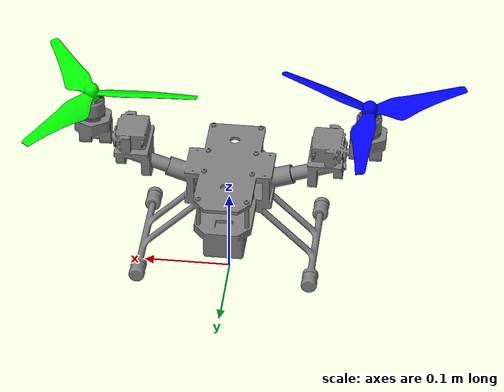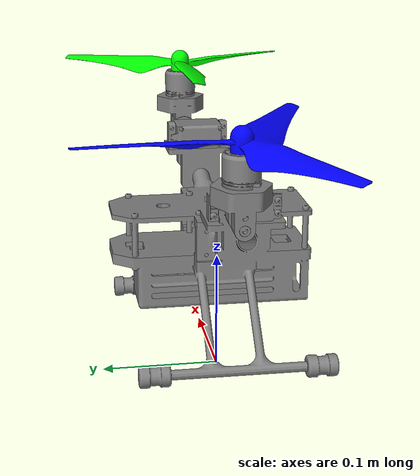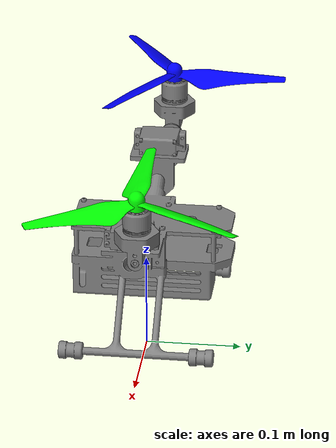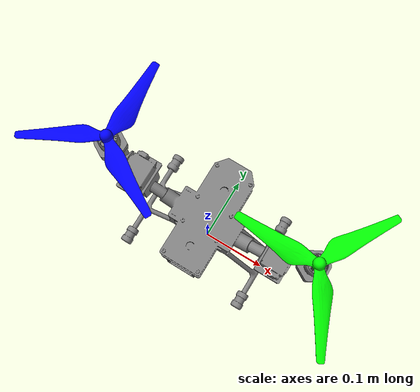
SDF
<sdf version="1.9">
 <world name="runway">
  <physics name="1ms" type="ignore">
   <max_step_size>0.001</max_step_size>
   <real_time_factor>1.0</real_time_factor>
  </physics>
  <plugin filename="gz-sim-physics-system" name="gz::sim::systems::Physics"/>
  <plugin filename="gz-sim-sensors-system" name="gz::sim::systems::Sensors">
   <render_engine>ogre2</render_engine>
  </plugin>
  <plugin filename="gz-sim-user-commands-system" name="gz::sim::systems::UserCommands"/>
  <plugin filename="gz-sim-scene-broadcaster-system" name="gz::sim::systems::SceneBroadcaster"/>
  <plugin filename="gz-sim-imu-system" name="gz::sim::systems::Imu"/>
  <scene><ambient>1.0 1.0 1.0</ambient><background>0.8 0.8 0.8</background></scene>
  <light type="directional" name="sun">
   <pose>0 0 10 0 0 0</pose>
   <diffuse>0.8 0.8 0.8 1</diffuse>
   <specular>0.8 0.8 0.8 1</specular>
   <attenuation>
    <range>1000</range>
    <constant>0.9</constant>
    <linear>0.01</linear>
    <quadratic>0.001</quadratic>
   </attenuation>
   <direction>-0.5 0.1 -0.9</direction>
  </light>
  <include><pose degrees="true">0 0 0.03 0 0 90</pose><uri>model://bicopter_with_ardupilot</uri></include>
 </world>
</sdf>

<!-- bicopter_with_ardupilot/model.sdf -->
<sdf version="1.9">
  <model name="bicopter_with_ardupilot">
    <include>
      <uri>model://bicopter</uri>
    </include>

    <!-- plugins -->
    <plugin name="gz::sim::systems::ApplyJointForce"
        filename="gz-sim-apply-joint-force-system">
      <joint_name>bicopter::ccw_mot_joint</joint_name>
    </plugin>

    <plugin name="gz::sim::systems::ApplyJointForce"
        filename="gz-sim-apply-joint-force-system">
      <joint_name>bicopter::cw_mot_joint</joint_name>
    </plugin>

    <plugin name="gz::sim::systems::ApplyJointForce"
        filename="gz-sim-apply-joint-force-system">
      <joint_name>bicopter::ccw_servo_joint</joint_name>
    </plugin>

    <plugin name="gz::sim::systems::ApplyJointForce"
        filename="gz-sim-apply-joint-force-system">
      <joint_name>bicopter::cw_servo_joint</joint_name>
    </plugin>

    <plugin name="ArduPilotPlugin" filename="ArduPilotPlugin">
      <!-- Port settings -->
      <fdm_addr>127.0.0.1</fdm_addr>
      <fdm_port_in>9002</fdm_port_in>
      <connectionTimeoutMaxCount>5</connectionTimeoutMaxCount>
      <lock_step>1</lock_step>
      <no_time_sync>1</no_time_sync>
      <have_32_channels>0</have_32_channels>

      <!-- Frame conventions
        Require by ArduPilot: change model and gazebo from XYZ to XY-Z coordinates
      -->
      <modelXYZToAirplaneXForwardZDown degrees="true">0 0 0 180 0 0</modelXYZToAirplaneXForwardZDown>
      <gazeboXYZToNED degrees="true">0 0 0 180 0 90</gazeboXYZToNED>

      <!-- Sensors -->
      <imuName>bicopter::imu_link::imu_sensor</imuName>

      <!--
        Details in: https://github.com/ArduPilot/ardupilot/pull/9596

        FRAME_CLASS     10 (BiCopter)
        FRAME_TYPE       0
      -->

      <!--
        SERVO1_FUNCTION 73 (ThrottleLeft)
      -->
      <control channel="0">
        <jointName>bicopter::ccw_mot_joint</jointName>
        <useForce>1</useForce>
        <multiplier>-800</multiplier>
        <offset>0</offset>
        <servo_min>1000</servo_min>
        <servo_max>2000</servo_max>
        <type>VELOCITY</type>
        <p_gain>0.01</p_gain>
        <i_gain>0</i_gain>
        <d_gain>0</d_gain>
        <i_max>1</i_max>
        <i_min>-1</i_min>
        <cmd_max>2.5</cmd_max>
        <cmd_min>-2.5</cmd_min>
      </control>

      <!--
        SERVO2_FUNCTION 74 (ThrottleRight)
      -->
      <control channel="1">
        <jointName>bicopter::cw_mot_joint</jointName>
        <useForce>1</useForce>
        <multiplier>800</multiplier>
        <offset>0</offset>
        <servo_min>1000</servo_min>
        <servo_max>2000</servo_max>
        <type>VELOCITY</type>
        <p_gain>0.01</p_gain>
        <i_gain>0</i_gain>
        <d_gain>0</d_gain>
        <i_max>1</i_max>
        <i_min>-1</i_min>
        <cmd_max>2.5</cmd_max>
        <cmd_min>-2.5</cmd_min>
      </control>

      <!--
        SERVO3_FUNCTION 75 (TiltMotorFrontLeft)
        SERVO3_REVERSED 0
        SERVO3_TRIM     1500
      -->
      <control channel="2">
        <jointName>bicopter::ccw_servo_joint</jointName>
        <useForce>1</useForce>
        <multiplier>1.570796327</multiplier>
        <offset>-0.5</offset>
        <servo_min>1000</servo_min>
        <servo_max>2000</servo_max>
        <type>POSITION</type>
        <p_gain>0.5</p_gain>
        <i_gain>0.0</i_gain>
        <d_gain>0.01</d_gain>
        <i_max>-1</i_max>
        <i_min>0</i_min>
        <cmd_max>2.5</cmd_max>
        <cmd_min>-2.5</cmd_min>
      </control>

      <!--
        SERVO4_FUNCTION 76 (TiltMotorFrontRight)
        SERVO4_REVERSED 0
        SERVO4_TRIM     1500
      -->
      <control channel="3">
        <jointName>bicopter::cw_servo_joint</jointName>
        <useForce>1</useForce>
        <multiplier>1.570796327</multiplier>
        <offset>-0.5</offset>
        <servo_min>1000</servo_min>
        <servo_max>2000</servo_max>
        <type>POSITION</type>
        <p_gain>0.5</p_gain>
        <i_gain>0.0</i_gain>
        <d_gain>0.01</d_gain>
        <i_max>-1</i_max>
        <i_min>0</i_min>
        <cmd_max>2.5</cmd_max>
        <cmd_min>-2.5</cmd_min>
      </control>
    </plugin>

  </model>
</sdf>

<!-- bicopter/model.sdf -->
<sdf version="1.9">
  <model name="bicopter">
    <pose>0 0 0 0 0 0</pose>
    <link name="base_link">
      <inertial>
        <pose>0.0047 0 0.08 0 0 0</pose>
        <mass>0.40</mass>
        <inertia>
          <ixx>0.000813333</ixx>
          <ixy>0</ixy>
          <ixz>0</ixz>
          <iyy>0.001186667</iyy>
          <iyz>0</iyz>
          <izz>0.001333333</izz>
        </inertia>
      </inertial>
      <collision name="collision">
        <geometry>
          <mesh>
            <scale>1 1 1</scale>
            <uri>model://bicopter/meshes/base.stl</uri>
          </mesh>
        </geometry>
        <!--
          Collision approximation:
        -->
        <surface>
          <friction>
            <ode>
              <mu>1.0</mu>
              <mu2>1.0</mu2>
            </ode>
          </friction>
        </surface>
      </collision>
      <visual name="visual">
        <geometry>
          <mesh>
            <scale>1 1 1</scale>
            <uri>model://bicopter/meshes/base.stl</uri>
          </mesh>
        </geometry>
        <material>
          <ambient>0.5 0.5 0.5 1</ambient>
          <diffuse>0.5 0.5 0.5 1</diffuse>
          <specular>0.1 0.1 0.1 1</specular>
        </material>
      </visual>
    </link>

    <!-- left servo (ccw) -->
    <link name="ccw_servo_link">
      <pose relative_to="ccw_servo_joint">0 0 0 0 0 0</pose>
      <inertial>
        <pose>0 0 0 0 0 0</pose>
        <mass>0.050</mass>
        <inertia>
          <ixx>8.33333E-06</ixx>
          <ixy>0</ixy>
          <ixz>0</ixz>
          <iyy>5.41667E-06</iyy>
          <iyz>0</iyz>
          <izz>1.04167E-05</izz>
        </inertia>
      </inertial>
      <collision name="collision">
        <geometry>
          <mesh>
            <scale>1 1 1</scale>
            <uri>model://bicopter/meshes/ccw_servo.stl</uri>
          </mesh>
        </geometry>
      </collision>
      <visual name="visual">
        <geometry>
          <mesh>
            <scale>1 1 1</scale>
            <uri>model://bicopter/meshes/ccw_servo.stl</uri>
          </mesh>
        </geometry>
        <material>
          <ambient>0.5 0.5 0.5</ambient>
          <diffuse>0.5 0.5 0.5</diffuse>
          <specular>0.1 0.1 0.1 1</specular>
        </material>
      </visual>
    </link>
    <joint name="ccw_servo_joint" type="revolute">
      <pose relative_to="base_link">0.010312 0.15468 0.15176 0.018488 0 3.14159</pose>
      <parent>base_link</parent>
      <child>ccw_servo_link</child>
      <axis>
        <xyz>0 -1 0</xyz>
        <limit>
          <lower>-0.785398163</lower>
          <upper>0.785398163</upper>
        </limit>
        <dynamics>
          <damping>0.01</damping>
        </dynamics>
      </axis>
    </joint>

    <!-- left motor (ccw) -->
    <link name="ccw_mot_link">
      <pose relative_to="ccw_mot_joint">0 0 0 0 0 0</pose>
      <inertial>
        <pose>7e-06 -1.2e-05 0.017767 0 0 0</pose>
        <mass>0.050</mass>
        <inertia>
          <ixx>1.19292E-05</ixx>
          <ixy>0</ixy>
          <ixz>0</ixz>
          <iyy>1.19292E-05</iyy>
          <iyz>0</iyz>
          <izz>0.000018225</izz>
          </inertia>
      </inertial>
      <collision name="collision">
        <geometry>
          <mesh>
            <scale>1 1 1</scale>
            <uri>model://bicopter/meshes/ccw_mot.stl</uri>
          </mesh>
        </geometry>
      </collision>
      <visual name="visual">
        <geometry>
          <mesh>
            <scale>1 1 1</scale>
            <uri>model://bicopter/meshes/ccw_mot.stl</uri>
          </mesh>
        </geometry>
        <material>
          <ambient>0 0 1 1</ambient>
          <diffuse>0 0 1 1</diffuse>
          <specular>0.1 0.1 0.1 1</specular>
        </material>
      </visual>
    </link>
    <joint name="ccw_mot_joint" type="revolute">
      <pose relative_to="ccw_servo_link">0 -0.004 0.0425 0 0 0</pose>
      <parent>ccw_servo_link</parent>
      <child>ccw_mot_link</child>
      <axis>
        <xyz>0 0 -1</xyz>
        <limit>
          <lower>-1e+16</lower>
          <upper>1e+16</upper>
        </limit>
        <dynamics>
          <damping>0.004</damping>
        </dynamics>
      </axis>
    </joint>

    <!-- right servo (cw) -->
    <link name="cw_servo_link">
      <pose relative_to="cw_servo_joint">0 0 0 0 0 0</pose>
      <inertial>
        <pose>0 0 0 0 0 0</pose>
        <mass>0.050</mass>
        <inertia>
          <ixx>8.33333E-06</ixx>
          <ixy>0</ixy>
          <ixz>0</ixz>
          <iyy>5.41667E-06</iyy>
          <iyz>0</iyz>
          <izz>1.04167E-05</izz>
        </inertia>
      </inertial>
      <collision name="collision">
        <geometry>
          <mesh>
            <scale>1 1 1</scale>
            <uri>model://bicopter/meshes/cw_servo.stl</uri>
          </mesh>
        </geometry>
      </collision>
      <visual name="visual">
        <geometry>
          <mesh>
            <scale>1 1 1</scale>
            <uri>model://bicopter/meshes/cw_servo.stl</uri>
          </mesh>
        </geometry>
        <material>
          <ambient>0.5 0.5 0.5</ambient>
          <diffuse>0.5 0.5 0.5</diffuse>
          <specular>0.1 0.1 0.1 1</specular>
        </material>
      </visual>
    </link>
    <joint name="cw_servo_joint" type="revolute">
      <pose relative_to="base_link">0.010312 -0.14923 0.15181 -0.018488 0 -3.14159</pose>
      <parent>base_link</parent>
      <child>cw_servo_link</child>
      <axis>
        <xyz>0 1 0</xyz>
        <limit>
          <lower>-0.785398163</lower>
          <upper>0.785398163</upper>
        </limit>
        <dynamics>
          <damping>0.01</damping>
        </dynamics>
      </axis>
    </joint>

    <!-- right motor (cw) -->
    <link name="cw_mot_link">
      <pose relative_to="cw_mot_joint">0 0 0 0 0 0</pose>
      <inertial>
        <pose>0 9e-06 0.017847 0 0 0</pose>
        <mass>0.050</mass>
        <inertia>
          <ixx>1.19292E-05</ixx>
          <ixy>0</ixy>
          <ixz>0</ixz>
          <iyy>1.19292E-05</iyy>
          <iyz>0</iyz>
          <izz>0.000018225</izz>
        </inertia>
      </inertial>
      <collision name="collision">
        <geometry>
          <mesh>
            <scale>1 1 1</scale>
            <uri>model://bicopter/meshes/cw_mot.stl</uri>
          </mesh>
        </geometry>
      </collision>
      <visual name="visual">
        <geometry>
          <mesh>
            <scale>1 1 1</scale>
            <uri>model://bicopter/meshes/cw_mot.stl</uri>
          </mesh>
        </geometry>
        <material>
          <ambient>0 1 0</ambient>
          <diffuse>0 1 0</diffuse>
          <specular>0.1 0.1 0.1 1.0</specular>
        </material>
      </visual>
      </link>
    <joint name="cw_mot_joint" type="revolute">
      <pose relative_to="cw_servo_link">0 0.003829 0.041455 0 0 0</pose>
      <parent>cw_servo_link</parent>
      <child>cw_mot_link</child>
      <axis>
        <xyz>0 0 -1</xyz>
        <limit>
          <lower>-1e+16</lower>
          <upper>1e+16</upper>
        </limit>
        <dynamics>
          <damping>0.004</damping>
        </dynamics>
      </axis>
    </joint>

    <!-- sensors -->
    <link name="imu_link">
      <pose>0 0 0.08 0 0 0</pose>
      <inertial>
        <mass>0.05</mass>
        <inertia>
          <ixx>1.33333E-05</ixx>
          <ixy>0</ixy>
          <ixz>0</ixz>
          <iyy>1.33333E-05</iyy>
          <iyz>0</iyz>
          <izz>1.33333E-05</izz>
        </inertia>
      </inertial>
      <sensor name="imu_sensor" type="imu">
        <pose degrees="true">0 0 0 180 0 0</pose>
        <always_on>1</always_on>
        <update_rate>1000.0</update_rate>
      </sensor>
    </link>
    <joint name="imu_joint" type="revolute">
      <child>imu_link</child>
      <parent>base_link</parent>
      <axis>
        <xyz>0 0 1</xyz>
        <limit>
          <lower>0</lower>
          <upper>0</upper>
        </limit>
        <dynamics>
          <damping>1.0</damping>
        </dynamics>
      </axis>
    </joint>

    <!-- plugins -->
    <plugin name="gz::sim::systems::JointStatePublisher"
        filename="gz-sim-joint-state-publisher-system">
    </plugin>

    <!-- left servo (ccw prop) -->

    <!-- right servo (cw prop) -->

    <!-- left motor (ccw prop) -->

    <!-- right motor (cw prop) -->

    <!-- prop left (ccw) lift-drag -->
    <plugin name="gz::sim::systems::LiftDrag"
      filename="gz-sim-lift-drag-system">
      <a0>0.3</a0>
      <alpha_stall>1.4</alpha_stall>
      <cla>4.2500</cla>
      <cda>0.10</cda>
      <cma>0.0</cma>
      <cla_stall>-0.025</cla_stall>
      <cda_stall>0.0</cda_stall>
      <cma_stall>0.0</cma_stall>
      <area>0.002</area>
      <air_density>1.2041</air_density>
      <cp>0.084 0 0</cp>
      <forward>0 1 0</forward>
      <upward>0 0 1</upward>
      <link_name>ccw_mot_link</link_name>
    </plugin>
    <plugin name="gz::sim::systems::LiftDrag"
      filename="gz-sim-lift-drag-system">
      <a0>0.3</a0>
      <alpha_stall>1.4</alpha_stall>
      <cla>4.2500</cla>
      <cda>0.10</cda>
      <cma>0.0</cma>
      <cla_stall>-0.025</cla_stall>
      <cda_stall>0.0</cda_stall>
      <cma_stall>0.0</cma_stall>
      <area>0.002</area>
      <air_density>1.2041</air_density>
      <cp>-0.042 0.072746134 0</cp>
      <forward>-0.866025404 -0.5 0</forward>
      <upward>0 0 1</upward>
      <link_name>ccw_mot_link</link_name>
    </plugin>
    <plugin name="gz::sim::systems::LiftDrag"
      filename="gz-sim-lift-drag-system">
      <a0>0.3</a0>
      <alpha_stall>1.4</alpha_stall>
      <cla>4.2500</cla>
      <cda>0.10</cda>
      <cma>0.0</cma>
      <cla_stall>-0.025</cla_stall>
      <cda_stall>0.0</cda_stall>
      <cma_stall>0.0</cma_stall>
      <area>0.002</area>
      <air_density>1.2041</air_density>
      <cp>-0.042 -0.072746134 0</cp>
      <forward>0.866025404 -0.5 0</forward>
      <upward>0 0 1</upward>
      <link_name>ccw_mot_link</link_name>
    </plugin>

    <!-- prop right (ccw) lift-drag -->
    <plugin name="gz::sim::systems::LiftDrag"
      filename="gz-sim-lift-drag-system">
      <a0>0.3</a0>
      <alpha_stall>1.4</alpha_stall>
      <cla>4.2500</cla>
      <cda>0.10</cda>
      <cma>0.0</cma>
      <cla_stall>-0.025</cla_stall>
      <cda_stall>0.0</cda_stall>
      <cma_stall>0.0</cma_stall>
      <area>0.002</area>
      <air_density>1.2041</air_density>
      <cp>0.084 0 0</cp>
      <forward>0 -1 0</forward>
      <upward>0 0 1</upward>
      <link_name>cw_mot_link</link_name>
    </plugin>
    <plugin name="gz::sim::systems::LiftDrag"
      filename="gz-sim-lift-drag-system">
      <a0>0.3</a0>
      <alpha_stall>1.4</alpha_stall>
      <cla>4.2500</cla>
      <cda>0.10</cda>
      <cma>0.0</cma>
      <cla_stall>-0.025</cla_stall>
      <cda_stall>0.0</cda_stall>
      <cma_stall>0.0</cma_stall>
      <area>0.002</area>
      <air_density>1.2041</air_density>
      <cp>-0.042 0.072746134 0</cp>
      <forward>0.866025404 0.5 0</forward>
      <upward>0 0 1</upward>
      <link_name>cw_mot_link</link_name>
    </plugin>
    <plugin name="gz::sim::systems::LiftDrag"
      filename="gz-sim-lift-drag-system">
      <a0>0.3</a0>
      <alpha_stall>1.4</alpha_stall>
      <cla>4.2500</cla>
      <cda>0.10</cda>
      <cma>0.0</cma>
      <cla_stall>-0.025</cla_stall>
      <cda_stall>0.0</cda_stall>
      <cma_stall>0.0</cma_stall>
      <area>0.002</area>
      <air_density>1.2041</air_density>
      <cp>-0.042 0.072746134 0</cp>
      <forward>-0.866025404 0.5 0</forward>
      <upward>0 0 1</upward>
      <link_name>cw_mot_link</link_name>
    </plugin>

  </model>
</sdf>
